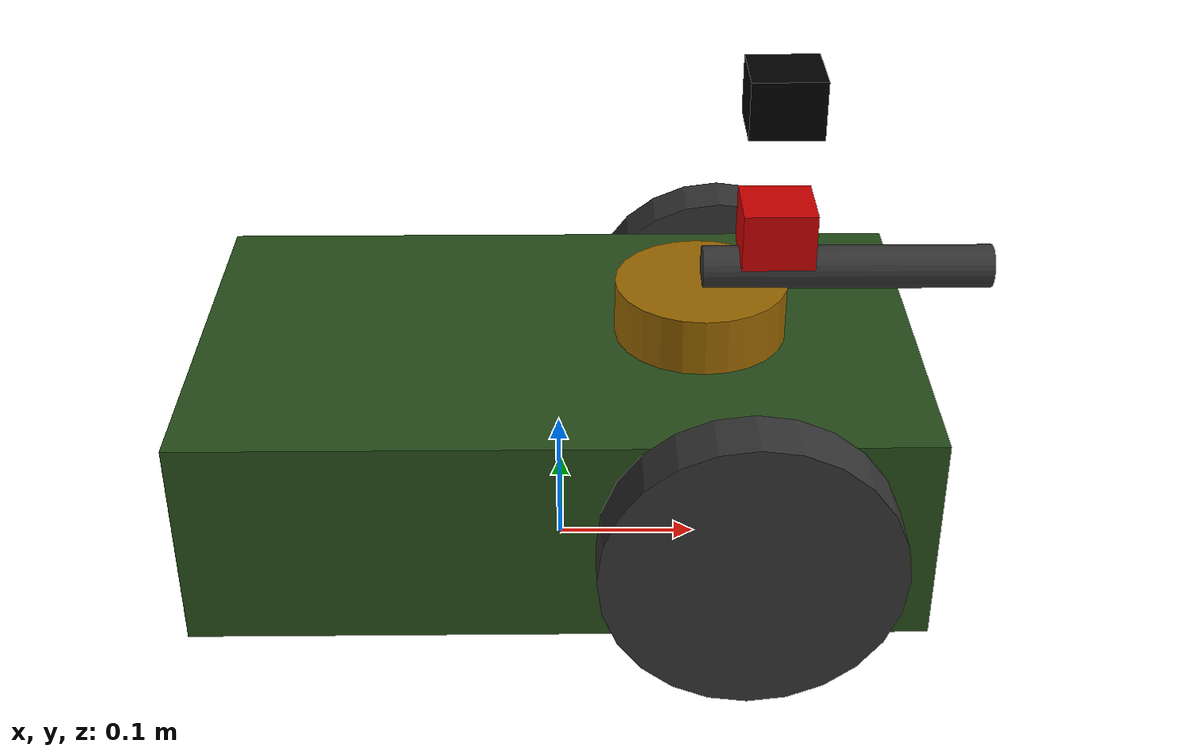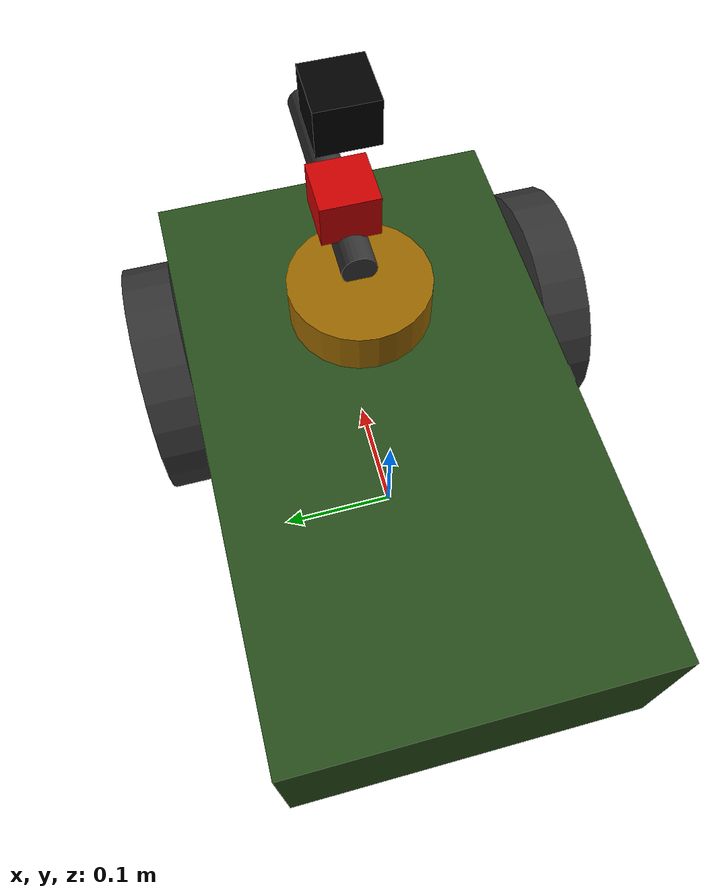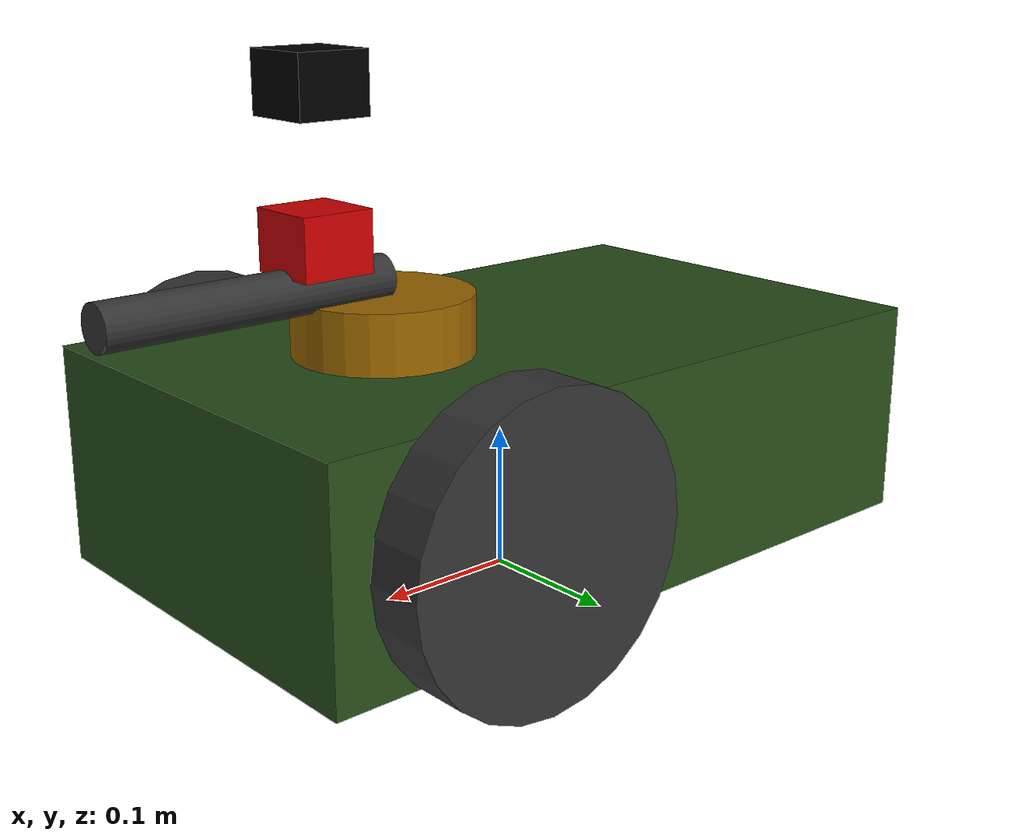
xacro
<?xml version="1.0"?>
<robot xmlns:xacro="http://www.ros.org/wiki/xacro" name="differential_bot">
    <xacro:property name="chassis_length" value="0.5" />
    <xacro:property name="chassis_width" value="0.3" />
    <xacro:property name="chassis_height" value="0.15" />
    <xacro:property name="chassis_mass" value="5.0" />

    <xacro:property name="wheel_radius" value="0.1" />
    <xacro:property name="wheel_length" value="0.04" />
    <xacro:property name="wheel_mass" value="0.5" />
    <xacro:property name="wheel_x_offset" value="${chassis_length/4}" />

    <link name="base_footprint"/>

    <link name="base_link">
        <inertial>
            <origin xyz="0.0 0.0 0.0" rpy="0.0 0.0 0.0"/>
            <mass value="${chassis_mass}"/>
            <inertia ixx="${(1.0/12.0)*chassis_mass*(chassis_width*chassis_width+chassis_height*chassis_height)}" ixy="0.0" ixz="0.0" iyy="${(1.0/12.0)*chassis_mass*(chassis_length*chassis_length+chassis_height*chassis_height)}" iyz="0.0" izz="${(1.0/12.0)*chassis_mass*(chassis_width*chassis_width+chassis_length*chassis_length)}"/>
        </inertial>
        <visual>
            <geometry>
                <box size="${chassis_length} ${chassis_width} ${chassis_height}"/>
            </geometry>
            <material name="green_theme">
                <color rgba="0.15 0.3 0.1 1.0"/>
            </material>
        </visual>
        <collision>
            <geometry>
                <box size="${chassis_length} ${chassis_width} ${chassis_height}"/>
            </geometry>
        </collision>
    </link>

    <joint name="base_footprint_to_base_link_joint" type="fixed">
        <origin xyz="0.0 0.0 ${wheel_radius}" rpy="0.0 0.0 0.0"/>
        <parent link="base_footprint"/>
        <child link="base_link"/>
    </joint>

    <xacro:macro name="generate_wheel" params="side reflect">
        <link name="${side}_wheel">
            <inertial>
                <mass value="${wheel_mass}"/>
                <inertia ixx="${(1.0/12.0)*wheel_mass*(3.0*wheel_radius*wheel_radius+wheel_length*wheel_length)}" ixy="0.0" ixz="0.0" iyy="${(1.0/12.0)*wheel_mass*(3.0*wheel_radius*wheel_radius+wheel_length*wheel_length)}" iyz="0.0" izz="${0.5 * wheel_mass * wheel_radius * wheel_radius}"/>
            </inertial>
            <visual name="">
                <origin xyz="0.0 0.0 0.0" rpy="${pi/2} 0.0 0.0"/>
                <geometry>
                    <cylinder radius="${wheel_radius}" length="${wheel_length}"/>
                </geometry>
                <material name="dark_grey">
                    <color rgba="0.2 0.2 0.2 1.0"/>
                </material>
            </visual>
            <collision>
                <origin xyz="0.0 0.0 0.0" rpy="${pi/2} 0.0 0.0"/>
                <geometry>
                    <cylinder radius="${wheel_radius}" length="${wheel_length}"/>
                </geometry>
            </collision>
        </link>

        <joint name="${side}_wheel_joint" type="continuous">
            <origin xyz="${wheel_x_offset} ${reflect*(chassis_width/2+wheel_length/2)} 0.0" rpy="0.0 0.0 0.0"/>
            <parent link="base_link"/>
            <child link="${side}_wheel"/>
            <axis xyz="0.0 1.0 0.0"/>
        </joint>
    </xacro:macro>

    <xacro:generate_wheel side="left" reflect="1"/>
    <xacro:generate_wheel side="right" reflect="-1"/>

    <link name="laser_frame">
        <inertial>
            <mass value="0.1"/>
            <inertia ixx="0.001" ixy="0.0" ixz="0.0" iyy="0.001" iyz="0.0" izz="0.001"/>
        </inertial>
        <visual name="">
            <geometry>
                <box size="0.05 0.05 0.04"/>
            </geometry>
            <material name="black">
                <color rgba="0.0 0.0 0.0 1.0"/>
            </material>
        </visual>
        <collision>
            <geometry>
                <box size="0.05 0.05 0.04"/>
            </geometry>
        </collision>
    </link>

    <joint name="base_link_to_laser_joint" type="fixed">
        <origin xyz="0.15 0.0 0.25" rpy="0.0 0.0 0.0"/>
        <parent link="base_link"/>
        <child link="laser_frame"/>
    </joint>

    <link name="turret_base">
        <inertial>
            <mass value="0.5"/>
            <inertia ixx="0.001" ixy="0.0" ixz="0.0" iyy="0.001" iyz="0.0" izz="0.001"/>
        </inertial>

        <visual name="">
            <geometry>
                <cylinder radius="0.06" length="0.04"/>
            </geometry>
            <material name="dark_grey">
                <color rgba="0.6 0.4 0.0 1.0"/>
            </material>
        </visual>

        <collision>
            <geometry>
                <cylinder radius="0.06" length="0.04"/>
            </geometry>
        </collision>
    </link>

    <joint name="turret_pan_joint" type="revolute">
        <origin xyz="0.1 0.0 ${(chassis_height/2) + 0.02}" rpy="0.0 0.0 0.0"/>
        <parent link="base_link"/>
        <child link="turret_base"/>
        <axis xyz="0.0 0.0 1.0"/>
        <limit lower="-1.57" upper="1.57" effort="10.0" velocity="1.0"/>
    </joint>

    <link name="shooter_barrel">
        <inertial>
            <mass value="0.2"/>
            <inertia ixx="0.001" ixy="0.0" ixz="0.0" iyy="0.001" iyz="0.0" izz="0.001"/>
        </inertial>

        <visual name="">
            <origin xyz="0.1 0.0 0.0" rpy="0.0 ${pi/2} 0.0"/>
            <geometry>
                <cylinder radius="0.015" length="0.2"/>
            </geometry>
            <material name="dark_grey"/>
        </visual>

        <collision>
            <origin xyz="0.1 0.0 0.0" rpy="0.0 ${pi/2} 0.0"/>
            <geometry>
                <cylinder radius="0.015" length="0.2"/>
            </geometry>
        </collision>
    </link>

    <joint name="shooter_tilt_joint" type="revolute">
        <parent link="turret_base"/>
        <child link="shooter_barrel"/>
        <origin xyz="0.0 0.0 0.03" rpy="0.0 0.0 0.0"/>
        <axis xyz="0.0 -1.0 0.0"/>
        <limit lower="-0.200" upper="0.785" effort="10.0" velocity="1.0"/>
    </joint>

    <link name="camera_frame">
        <inertial>
            <mass value="0.1"/>
            <inertia ixx="0.0004" ixy="0.0" ixz="0.0" iyy="0.0004" iyz="0.0" izz="0.0004"/>
        </inertial>
        <visual name="">
            <geometry>
                <box size="0.05 0.05 0.04"/>
            </geometry>
            <material name="red">
                <color rgba="0.8 0.0 0.0 1.0"/>
            </material>
        </visual>
        <collision>
            <geometry>
                <box size="0.05 0.05 0.04"/>
            </geometry>
        </collision>
    </link>

    <joint name="barrel_to_camera_joint" type="fixed">
        <origin xyz="0.05 0.0 0.03" rpy="0.0 0.0 0.0"/>
        <parent link="shooter_barrel"/>
        <child link="camera_frame"/>
    </joint>

    <gazebo>
        <plugin filename="gz-sim-diff-drive-system" name="gz::sim::systems::DiffDrive">
            <left_joint>left_wheel_joint</left_joint>
            <right_joint>right_wheel_joint</right_joint>
            <wheel_separation>${chassis_width+wheel_length}</wheel_separation>
            <wheel_radius>${wheel_radius}</wheel_radius>
            <topic>/cmd_vel</topic>
            <odom_topic>/odom</odom_topic>
            <tf_topic>/tf</tf_topic>
            <frame_id>odom</frame_id>
            <child_frame_id>base_footprint</child_frame_id>
        </plugin>

        <plugin filename="gz-sim-sensors-system" name="gz::sim::systems::Sensors">
            <render_engine>ogre2</render_engine>
        </plugin>

        <plugin filename="gz-sim-joint-state-publisher-system" name="gz::sim::systems::JointStatePublisher"/>

        <plugin filename="gz-sim-joint-position-controller-system" name="gz::sim::systems::JointPositionController">
            <joint_name>turret_pan_joint</joint_name>
            <topic>/turret/pan_cmd</topic>
            <p_gain>10.0</p_gain>
        </plugin>

        <plugin filename="gz-sim-joint-position-controller-system" name="gz::sim::systems::JointPositionController">
            <joint_name>shooter_tilt_joint</joint_name>
            <topic>/turret/tilt_cmd</topic>
            <p_gain>10.0</p_gain>
        </plugin>

        <plugin filename="libignition-gazebo-pose-publisher-system.so" name="ignition::gazebo::systems::PosePublisher">
            <publish_link_pose>true</publish_link_pose>
            <publish_visual_pose>false</publish_visual_pose>
            <publish_nested_model_pose>true</publish_nested_model_pose>
            <update_frequency>50</update_frequency>
        </plugin>

    </gazebo>

    <gazebo reference="laser_frame">
        <sensor name="lidar_sensor" type="gpu_lidar">
            <topic>/scan</topic>
            <update_rate>10</update_rate>
            <gz_frame_id>laser_frame</gz_frame_id>
            <always_on>true</always_on>
            <visualize>true</visualize>
            <lidar>
                <scan>
                    <horizontal>
                        <samples>360</samples>
                        <resolution>1</resolution>
                        <min_angle>-3.14159</min_angle>
                        <max_angle>3.14159</max_angle>
                    </horizontal>
                </scan>
                <range>
                    <min>0.12</min>
                    <max>10.0</max>
                    <resolution>0.01</resolution>
                </range>
            </lidar>
        </sensor>
    </gazebo>

    <gazebo reference="camera_frame">
        <sensor name="camera_sensor" type="camera">
            <topic>/camera/image_raw</topic>
            <update_rate>30.0</update_rate>
            <always_on>true</always_on>
            <visualize>true</visualize>
            <camera>
                <horizontal_fov>1.396263</horizontal_fov>
                <image>
                    <width>640</width>
                    <height>480</height>
                    <format>R8G8B8</format>
                </image>
                <clip>
                    <near>0.02</near>
                    <far>300</far>
                </clip>
                <noise>
                    <type>gaussian</type>
                    <mean>0.0</mean>
                    <stddev>0.007</stddev>
                </noise>
            </camera>
        </sensor>
    </gazebo>

    <link name="caster_wheel">
        <inertial>
            <mass value="0.1"/>
            <inertia ixx="0.0001" ixy="0.0" ixz="0.0" iyy="0.0001" iyz="0.0" izz="0.0001"/>
        </inertial>
        <visual>
            <geometry>
                <sphere radius="0.025"/>
            </geometry>
            <material name="dark_grey"/>
        </visual>
        <collision>
            <geometry>
                <sphere radius="0.025"/>
            </geometry>
        </collision>
    </link>

    <joint name="caster_wheel_joint" type="fixed">
        <origin xyz="${-chassis_length/2 + 0.05} 0.0 ${-chassis_height/2}" rpy="0.0 0.0 0.0"/>
        <parent link="base_link"/>
        <child link="caster_wheel"/>
    </joint>

    <gazebo reference="caster_wheel">
        <mu1 value="0.001"/>
        <mu2 value="0.001"/>
    </gazebo>

</robot>
